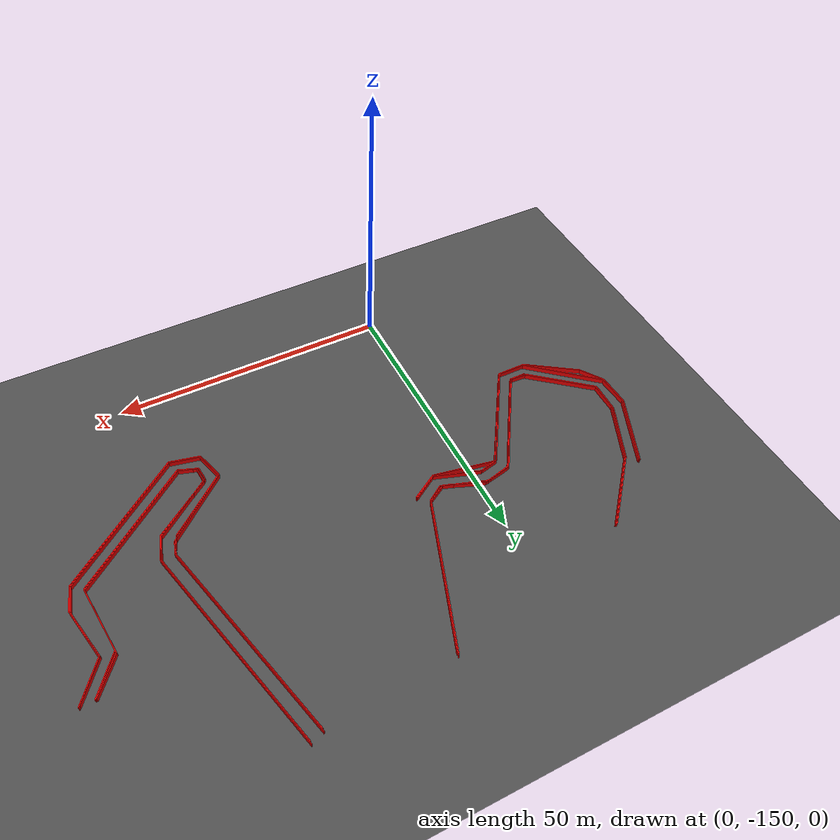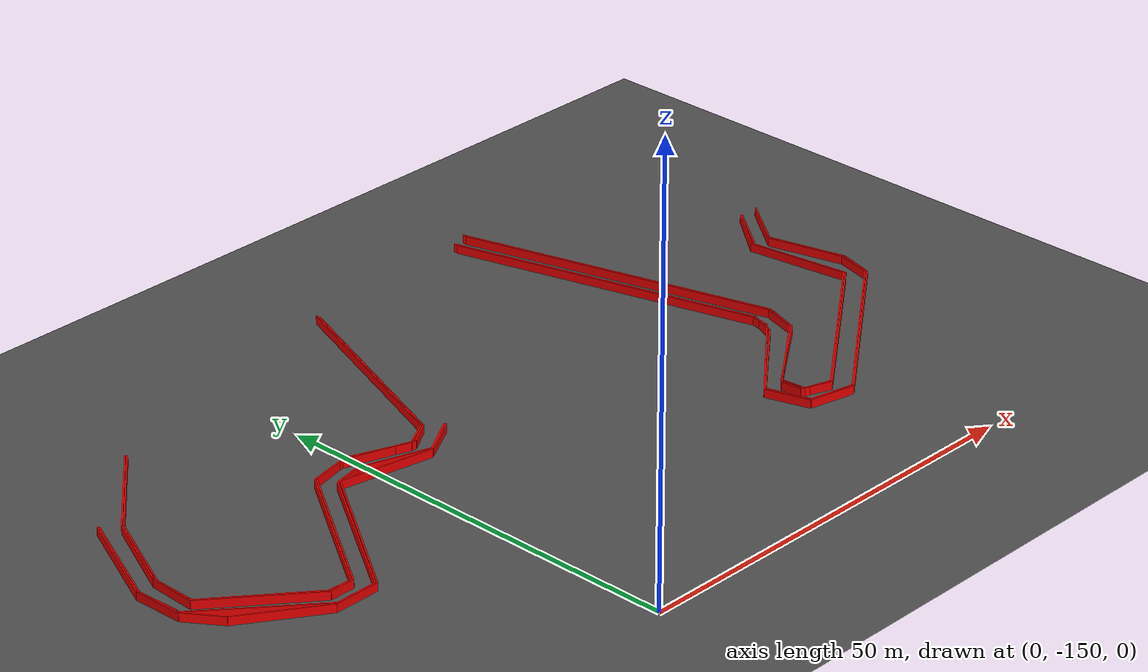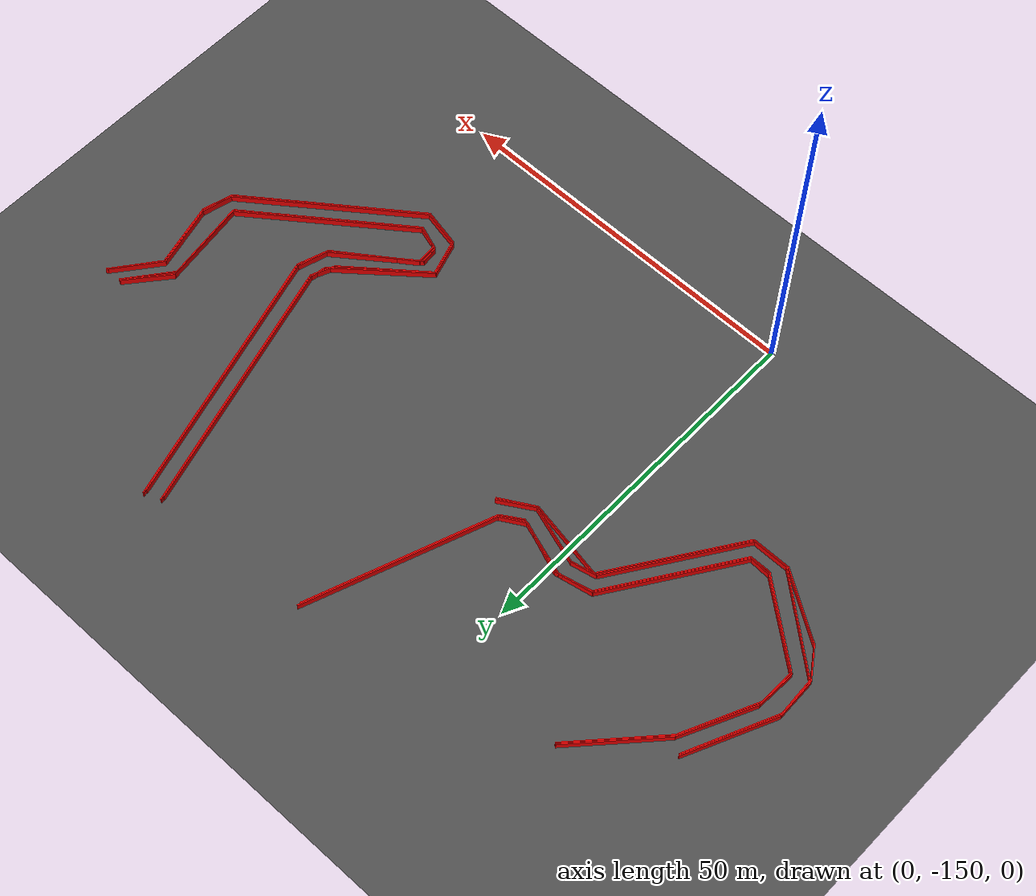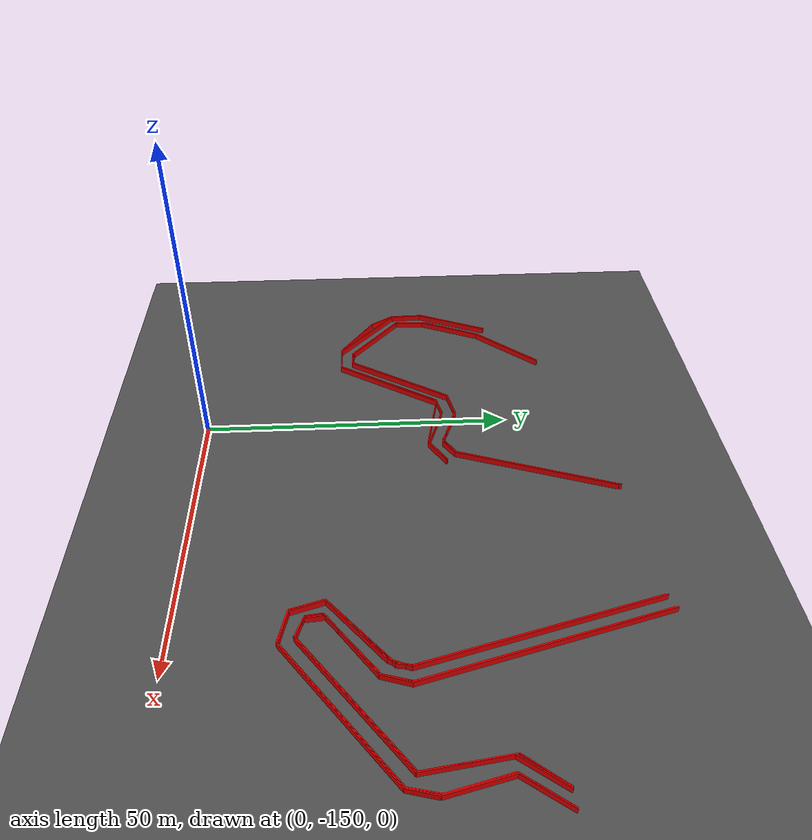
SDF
<sdf version="1.6">
 <world name="track_world">
  <model name="ground_plane">
   <static>true</static>
   <link name="link">
    <collision name="collision">
     <geometry><plane><normal>0 0 1</normal><size>1000 1000</size></plane></geometry>
    </collision>
    <visual name="visual">
     <geometry><plane><normal>0 0 1</normal><size>1000 1000</size></plane></geometry>
     <material><ambient>0.3 0.3 0.3 1</ambient><diffuse>0.3 0.3 0.3 1</diffuse></material>
    </visual>
   </link>
  </model>
  <model name="wall_8">
   <static>true</static>
   <pose>-29.93887694462932 -106.46650683885576 0.5 0 0 -1.9962459641649386</pose>
   <link name="link">
    <visual name="visual">
     <geometry><box><size>13.022690594389474 0.15 1.0</size></box></geometry>
     <material><ambient>1 0 0 1</ambient><diffuse>1 0 0 1</diffuse></material>
    </visual>
    <collision name="collision">
     <geometry><box><size>13.022690594389474 0.15 1.0</size></box></geometry>
    </collision>
   </link>
  </model>
  <model name="wall_9">
   <static>true</static>
   <pose>-32.53363694462932 -115.27015683885577 0.5 0 0 -1.5385494443596432</pose>
   <link name="link">
    <visual name="visual">
     <geometry><box><size>5.7485285775753 0.15 1.0</size></box></geometry>
     <material><ambient>1 0 0 1</ambient><diffuse>1 0 0 1</diffuse></material>
    </visual>
    <collision name="collision"><geometry><box><size>5.7485285775753 0.15 1.0</size></box></geometry></collision>
   </link>
  </model>
  <model name="wall_10">
   <static>true</static>
   <pose>-31.09725194462932 -120.08899683885576 0.5 0 0 -0.9664908199286656</pose>
   <link name="link">
    <visual name="visual">
     <geometry><box><size>4.729802721520213 0.15 1.0</size></box></geometry>
     <material><ambient>1 0 0 1</ambient><diffuse>1 0 0 1</diffuse></material>
    </visual>
    <collision name="collision">
     <geometry><box><size>4.729802721520213 0.15 1.0</size></box></geometry>
    </collision>
   </link>
  </model>
  <model name="wall_11">
   <static>true</static>
   <pose>-25.398046944629318 -124.90783683885576 0.5 0 0 -0.583076535019145</pose>
   <link name="link">
    <visual name="visual">
     <geometry><box><size>10.435152248625798 0.15 1.0</size></box></geometry>
     <material><ambient>1 0 0 1</ambient><diffuse>1 0 0 1</diffuse></material>
    </visual>
    <collision name="collision">
     <geometry><box><size>10.435152248625798 0.15 1.0</size></box></geometry>
    </collision>
   </link>
  </model>
  <model name="wall_12">
   <static>true</static>
   <pose>-18.35512694462932 -127.78060683885576 0.5 0 0 0.0</pose>
   <link name="link">
    <visual name="visual">
     <geometry><box><size>5.374859999999998 0.15 1.0</size></box></geometry>
     <material><ambient>1 0 0 1</ambient><diffuse>1 0 0 1</diffuse></material>
    </visual>
    <collision name="collision">
     <geometry><box><size>5.374859999999998 0.15 1.0</size></box></geometry>
    </collision>
   </link>
  </model>
  <model name="wall_13">
   <static>true</static>
   <pose>-10.15383194462932 -119.48664183885576 0.5 0 0 0.9840840451118751</pose>
   <link name="link">
    <visual name="visual">
     <geometry><box><size>19.919092615824646 0.15 1.0</size></box></geometry>
     <material><ambient>1 0 0 1</ambient><diffuse>1 0 0 1</diffuse></material>
    </visual>
    <collision name="collision">
     <geometry><box><size>19.919092615824646 0.15 1.0</size></box></geometry>
    </collision>
   </link>
  </model>
  <model name="wall_14">
   <static>true</static>
   <pose>0.8275630553706819 -112.21204683885576 0.5 0 0 -0.184324408899698</pose>
   <link name="link">
    <visual name="visual">
     <geometry><box><size>11.12348857109136 0.15 1.0</size></box></geometry>
     <material><ambient>1 0 0 1</ambient><diffuse>1 0 0 1</diffuse></material>
    </visual>
    <collision name="collision">
     <geometry><box><size>11.12348857109136 0.15 1.0</size></box></geometry>
    </collision>
   </link>
  </model>
  <model name="wall_15">
   <static>true</static>
   <pose>8.611843055370684 -111.88770183885575 0.5 0 0 0.5255837935516091</pose>
   <link name="link">
    <visual name="visual">
     <geometry><box><size>5.3564542614401125 0.15 1.0</size></box></geometry>
     <material><ambient>1 0 0 1</ambient><diffuse>1 0 0 1</diffuse></material>
    </visual>
    <collision name="collision">
     <geometry><box><size>5.3564542614401125 0.15 1.0</size></box></geometry>
    </collision>
   </link>
  </model>
  <model name="wall_20">
   <static>true</static>
   <pose>45.26282805537068 -100.30395183885577 0.5 0 0 -1.2991655755919616</pose>
   <link name="link">
    <visual name="visual">
     <geometry><box><size>36.266307117634696 0.15 1.0</size></box></geometry>
     <material><ambient>1 0 0 1</ambient><diffuse>1 0 0 1</diffuse></material>
    </visual>
    <collision name="collision">
     <geometry><box><size>36.266307117634696 0.15 1.0</size></box></geometry>
    </collision>
   </link>
  </model>
  <model name="wall_21">
   <static>true</static>
   <pose>49.94266305537068 -118.88428683885576 0.5 0 0 -1.7359450042095266</pose>
   <link name="link">
    <visual name="visual">
     <geometry><box><size>2.254758414730946 0.15 1.0</size></box></geometry>
     <material><ambient>1 0 0 1</ambient><diffuse>1 0 0 1</diffuse></material>
    </visual>
    <collision name="collision">
     <geometry><box><size>2.254758414730946 0.15 1.0</size></box></geometry>
    </collision>
   </link>
  </model>
  <model name="wall_22">
   <static>true</static>
   <pose>44.28979305537068 -124.58349183885576 0.5 0 0 -2.443529368865176</pose>
   <link name="link">
    <visual name="visual">
     <geometry><box><size>14.273887632754429 0.15 1.0</size></box></geometry>
     <material><ambient>1 0 0 1</ambient><diffuse>1 0 0 1</diffuse></material>
    </visual>
    <collision name="collision">
     <geometry><box><size>14.273887632754429 0.15 1.0</size></box></geometry>
    </collision>
   </link>
  </model>
  <model name="wall_23">
   <static>true</static>
   <pose>39.60995805537068 -131.67274683885574 0.5 0 0 -1.2658039799804917</pose>
   <link name="link">
    <visual name="visual">
     <geometry><box><size>5.2463007085469195 0.15 1.0</size></box></geometry>
     <material><ambient>1 0 0 1</ambient><diffuse>1 0 0 1</diffuse></material>
    </visual>
    <collision name="collision">
     <geometry><box><size>5.2463007085469195 0.15 1.0</size></box></geometry>
    </collision>
   </link>
  </model>
  <model name="wall_24">
   <static>true</static>
   <pose>43.08508305537068 -134.77719183885574 0.5 0 0 -0.22049376136667279</pose>
   <link name="link">
    <visual name="visual">
     <geometry><box><size>5.508216245183189 0.15 1.0</size></box></geometry>
     <material><ambient>1 0 0 1</ambient><diffuse>1 0 0 1</diffuse></material>
    </visual>
    <collision name="collision">
     <geometry><box><size>5.508216245183189 0.15 1.0</size></box></geometry>
    </collision>
   </link>
  </model>
  <model name="wall_25">
   <static>true</static>
   <pose>56.24422305537068 -127.50259683885577 0.5 0 0 0.6449155350070506</pose>
   <link name="link">
    <visual name="visual">
     <geometry><box><size>26.20710221497982 0.15 1.0</size></box></geometry>
     <material><ambient>1 0 0 1</ambient><diffuse>1 0 0 1</diffuse></material>
    </visual>
    <collision name="collision">
     <geometry><box><size>26.20710221497982 0.15 1.0</size></box></geometry>
    </collision>
   </link>
  </model>
  <model name="wall_26">
   <static>true</static>
   <pose>67.27195305537069 -117.54057183885575 0.5 0 0 1.3101939350475535</pose>
   <link name="link">
    <visual name="visual">
     <geometry><box><size>4.315875807307243 0.15 1.0</size></box></geometry>
     <material><ambient>1 0 0 1</ambient><diffuse>1 0 0 1</diffuse></material>
    </visual>
    <collision name="collision">
     <geometry><box><size>4.315875807307243 0.15 1.0</size></box></geometry>
    </collision>
   </link>
  </model>
  <model name="wall_27">
   <static>true</static>
   <pose>66.71593305537068 -110.96100183885576 0.5 0 0 1.8133478102220888</pose>
   <link name="link">
    <visual name="visual">
     <geometry><box><size>9.260047141699662 0.15 1.0</size></box></geometry>
     <material><ambient>1 0 0 1</ambient><diffuse>1 0 0 1</diffuse></material>
    </visual>
    <collision name="collision">
     <geometry><box><size>9.260047141699662 0.15 1.0</size></box></geometry>
    </collision>
   </link>
  </model>
  <model name="wall_28">
   <static>true</static>
   <pose>67.87430805537068 -103.45473183885576 0.5 0 0 0.9248382204887861</pose>
   <link name="link">
    <visual name="visual">
     <geometry><box><size>7.543360769007406 0.15 1.0</size></box></geometry>
     <material><ambient>1 0 0 1</ambient><diffuse>1 0 0 1</diffuse></material>
    </visual>
    <collision name="collision">
     <geometry><box><size>7.543360769007406 0.15 1.0</size></box></geometry>
    </collision>
   </link>
  </model>
  <model name="wall_41">
   <static>true</static>
   <pose>67.68896805537068 -103.59373683885576 0.5 0 0 -2.2242226679756585</pose>
   <link name="link">
    <visual name="visual">
     <geometry><box><size>7.4695699115344 0.15 1.0</size></box></geometry>
     <material><ambient>1 0 0 1</ambient><diffuse>1 0 0 1</diffuse></material>
    </visual>
    <collision name="collision"><geometry><box><size>7.4695699115344 0.15 1.0</size></box></geometry></collision>
   </link>
  </model>
  <model name="wall_42">
   <static>true</static>
   <pose>66.53059305537069 -110.91466683885577 0.5 0 0 -1.3208177053340726</pose>
   <link name="link">
    <visual name="visual">
     <geometry><box><size>8.990422927026302 0.15 1.0</size></box></geometry>
     <material><ambient>1 0 0 1</ambient><diffuse>1 0 0 1</diffuse></material>
    </visual>
    <collision name="collision">
     <geometry><box><size>8.990422927026302 0.15 1.0</size></box></geometry>
    </collision>
   </link>
  </model>
  <model name="wall_43">
   <static>true</static>
   <pose>67.13294805537069 -117.35523183885576 0.5 0 0 -1.8105394356653557</pose>
   <link name="link">
    <visual name="visual">
     <geometry><box><size>4.292932123782061 0.15 1.0</size></box></geometry>
     <material><ambient>1 0 0 1</ambient><diffuse>1 0 0 1</diffuse></material>
    </visual>
    <collision name="collision">
     <geometry><box><size>4.292932123782061 0.15 1.0</size></box></geometry>
    </collision>
   </link>
  </model>
  <model name="wall_44">
   <static>true</static>
   <pose>56.19788805537068 -127.31725683885577 0.5 0 0 -2.49454546036947</pose>
   <link name="link">
    <visual name="visual">
     <geometry><box><size>26.133104307994106 0.15 1.0</size></box></geometry>
     <material><ambient>1 0 0 1</ambient><diffuse>1 0 0 1</diffuse></material>
    </visual>
    <collision name="collision">
     <geometry><box><size>26.133104307994106 0.15 1.0</size></box></geometry>
    </collision>
   </link>
  </model>
  <model name="wall_45">
   <static>true</static>
   <pose>43.17775305537068 -134.63818683885575 0.5 0 0 2.9304993203670455</pose>
   <link name="link">
    <visual name="visual">
     <geometry><box><size>5.307329911735281 0.15 1.0</size></box></geometry>
     <material><ambient>1 0 0 1</ambient><diffuse>1 0 0 1</diffuse></material>
    </visual>
    <collision name="collision">
     <geometry><box><size>5.307329911735281 0.15 1.0</size></box></geometry>
    </collision>
   </link>
  </model>
  <model name="wall_46">
   <static>true</static>
   <pose>39.79529805537068 -131.62641183885574 0.5 0 0 1.8811837339272484</pose>
   <link name="link">
    <visual name="visual">
     <geometry><box><size>5.1579825641620705 0.15 1.0</size></box></geometry>
     <material><ambient>1 0 0 1</ambient><diffuse>1 0 0 1</diffuse></material>
    </visual>
    <collision name="collision">
     <geometry><box><size>5.1579825641620705 0.15 1.0</size></box></geometry>
    </collision>
   </link>
  </model>
  <model name="wall_47">
   <static>true</static>
   <pose>44.01178305537068 -125.09317683885575 0.5 0 0 0.6837093116343717</pose>
   <link name="link">
    <visual name="visual">
     <geometry><box><size>12.910098469461802 0.15 1.0</size></box></geometry>
     <material><ambient>1 0 0 1</ambient><diffuse>1 0 0 1</diffuse></material>
    </visual>
    <collision name="collision">
     <geometry><box><size>12.910098469461802 0.15 1.0</size></box></geometry>
    </collision>
   </link>
  </model>
  <model name="wall_48">
   <static>true</static>
   <pose>49.66465305537068 -119.44030683885576 0.5 0 0 1.1801892830972085</pose>
   <link name="link">
    <visual name="visual">
     <geometry><box><size>3.4074344414529816 0.15 1.0</size></box></geometry>
     <material><ambient>1 0 0 1</ambient><diffuse>1 0 0 1</diffuse></material>
    </visual>
    <collision name="collision">
     <geometry><box><size>3.4074344414529816 0.15 1.0</size></box></geometry>
    </collision>
   </link>
  </model>
  <model name="wall_49">
   <static>true</static>
   <pose>45.35549805537068 -100.11861183885577 0.5 0 0 1.8432238598579263</pose>
   <link name="link">
    <visual name="visual">
     <geometry><box><size>36.85167937541246 0.15 1.0</size></box></geometry>
     <material><ambient>1 0 0 1</ambient><diffuse>1 0 0 1</diffuse></material>
    </visual>
    <collision name="collision">
     <geometry><box><size>36.85167937541246 0.15 1.0</size></box></geometry>
    </collision>
   </link>
  </model>
  <model name="wall_54">
   <static>true</static>
   <pose>8.611843055370684 -111.70236183885575 0.5 0 0 -2.5981150588767514</pose>
   <link name="link">
    <visual name="visual">
     <geometry><box><size>5.196961361266791 0.15 1.0</size></box></geometry>
     <material><ambient>1 0 0 1</ambient><diffuse>1 0 0 1</diffuse></material>
    </visual>
    <collision name="collision">
     <geometry><box><size>5.196961361266791 0.15 1.0</size></box></geometry>
    </collision>
   </link>
  </model>
  <model name="wall_55">
   <static>true</static>
   <pose>2.4029530553706806 -111.74869683885575 0.5 0 0 2.8268349921984854</pose>
   <link name="link">
    <visual name="visual">
     <geometry><box><size>8.381385470314564 0.15 1.0</size></box></geometry>
     <material><ambient>1 0 0 1</ambient><diffuse>1 0 0 1</diffuse></material>
    </visual>
    <collision name="collision">
     <geometry><box><size>8.381385470314564 0.15 1.0</size></box></geometry>
    </collision>
   </link>
  </model>
  <model name="wall_56">
   <static>true</static>
   <pose>-3.2962519446293186 -110.82199683885577 0.5 0 0 -2.9286543040103954</pose>
   <link name="link">
    <visual name="visual">
     <geometry><box><size>3.5080215953867713 0.15 1.0</size></box></geometry>
     <material><ambient>1 0 0 1</ambient><diffuse>1 0 0 1</diffuse></material>
    </visual>
    <collision name="collision">
     <geometry><box><size>3.5080215953867713 0.15 1.0</size></box></geometry>
    </collision>
   </link>
  </model>
  <model name="wall_57">
   <static>true</static>
   <pose>-10.43184194462932 -119.44030683885576 0.5 0 0 -2.152288605655935</pose>
   <link name="link">
    <visual name="visual">
     <geometry><box><size>19.73958012166673 0.15 1.0</size></box></geometry>
     <material><ambient>1 0 0 1</ambient><diffuse>1 0 0 1</diffuse></material>
    </visual>
    <collision name="collision">
     <geometry><box><size>19.73958012166673 0.15 1.0</size></box></geometry>
    </collision>
   </link>
  </model>
  <model name="wall_58">
   <static>true</static>
   <pose>-18.355126944629323 -127.68793683885576 0.5 0 0 3.141592653589793</pose>
   <link name="link">
    <visual name="visual">
     <geometry><box><size>5.004179999999998 0.15 1.0</size></box></geometry>
     <material><ambient>1 0 0 1</ambient><diffuse>1 0 0 1</diffuse></material>
    </visual>
    <collision name="collision">
     <geometry><box><size>5.004179999999998 0.15 1.0</size></box></geometry>
    </collision>
   </link>
  </model>
  <model name="wall_59">
   <static>true</static>
   <pose>-26.55642194462932 -122.91543183885577 0.5 0 0 2.444460128177153</pose>
   <link name="link">
    <visual name="visual">
     <geometry><box><size>14.867110224525815 0.15 1.0</size></box></geometry>
     <material><ambient>1 0 0 1</ambient><diffuse>1 0 0 1</diffuse></material>
    </visual>
    <collision name="collision">
     <geometry><box><size>14.867110224525815 0.15 1.0</size></box></geometry>
    </collision>
   </link>
  </model>
  <model name="wall_60">
   <static>true</static>
   <pose>-32.394631944629324 -115.40916183885577 0.5 0 0 1.6216000308531187</pose>
   <link name="link">
    <visual name="visual">
     <geometry><box><size>5.4745934881961755 0.15 1.0</size></box></geometry>
     <material><ambient>1 0 0 1</ambient><diffuse>1 0 0 1</diffuse></material>
    </visual>
    <collision name="collision">
     <geometry><box><size>5.4745934881961755 0.15 1.0</size></box></geometry>
    </collision>
   </link>
  </model>
  <model name="wall_61">
   <static>true</static>
   <pose>-29.846206944629323 -106.69818183885576 0.5 0 0 1.148264773313587</pose>
   <link name="link">
    <visual name="visual">
     <geometry><box><size>13.107155169772732 0.15 1.0</size></box></geometry>
     <material><ambient>1 0 0 1</ambient><diffuse>1 0 0 1</diffuse></material>
    </visual>
    <collision name="collision">
     <geometry><box><size>13.107155169772732 0.15 1.0</size></box></geometry>
    </collision>
   </link>
  </model>
  <model name="wall_77">
   <static>true</static>
   <pose>-20.71821194462932 -96.92149683885576 0.5 0 0 -2.3135663013202583</pose>
   <link name="link">
    <visual name="visual">
     <geometry><box><size>13.838892376158583 0.15 1.0</size></box></geometry>
     <material><ambient>1 0 0 1</ambient><diffuse>1 0 0 1</diffuse></material>
    </visual>
    <collision name="collision">
     <geometry><box><size>13.838892376158583 0.15 1.0</size></box></geometry>
    </collision>
   </link>
  </model>
  <model name="wall_78">
   <static>true</static>
   <pose>-27.66846194462932 -106.88352183885576 0.5 0 0 -2.0074234866084377</pose>
   <link name="link">
    <visual name="visual">
     <geometry><box><size>10.737730123792458 0.15 1.0</size></box></geometry>
     <material><ambient>1 0 0 1</ambient><diffuse>1 0 0 1</diffuse></material>
    </visual>
    <collision name="collision">
     <geometry><box><size>10.737730123792458 0.15 1.0</size></box></geometry>
    </collision>
   </link>
  </model>
  <model name="wall_79">
   <static>true</static>
   <pose>-30.077881944629322 -114.52879683885575 0.5 0 0 -1.6207547225168397</pose>
   <link name="link">
    <visual name="visual">
     <geometry><box><size>5.5671459115151585 0.15 1.0</size></box></geometry>
     <material><ambient>1 0 0 1</ambient><diffuse>1 0 0 1</diffuse></material>
    </visual>
    <collision name="collision">
     <geometry><box><size>5.5671459115151585 0.15 1.0</size></box></geometry>
    </collision>
   </link>
  </model>
  <model name="wall_80">
   <static>true</static>
   <pose>-25.02736694462932 -121.52538183885576 0.5 0 0 -0.6823165548747477</pose>
   <link name="link">
    <visual name="visual">
     <geometry><box><size>13.373086941409602 0.15 1.0</size></box></geometry>
     <material><ambient>1 0 0 1</ambient><diffuse>1 0 0 1</diffuse></material>
    </visual>
    <collision name="collision">
     <geometry><box><size>13.373086941409602 0.15 1.0</size></box></geometry>
    </collision>
   </link>
  </model>
  <model name="wall_81">
   <static>true</static>
   <pose>-18.35512694462932 -125.74186683885576 0.5 0 0 0.0</pose>
   <link name="link">
    <visual name="visual">
     <geometry><box><size>2.965440000000001 0.15 1.0</size></box></geometry>
     <material><ambient>1 0 0 1</ambient><diffuse>1 0 0 1</diffuse></material>
    </visual>
    <collision name="collision">
     <geometry><box><size>2.965440000000001 0.15 1.0</size></box></geometry>
    </collision>
   </link>
  </model>
  <model name="wall_82">
   <static>true</static>
   <pose>-11.451211944629321 -117.49423683885576 0.5 0 0 0.9893040479338583</pose>
   <link name="link">
    <visual name="visual">
     <geometry><box><size>19.73958012166671 0.15 1.0</size></box></geometry>
     <material><ambient>1 0 0 1</ambient><diffuse>1 0 0 1</diffuse></material>
    </visual>
    <collision name="collision">
     <geometry><box><size>19.73958012166671 0.15 1.0</size></box></geometry>
    </collision>
   </link>
  </model>
  <model name="wall_83">
   <static>true</static>
   <pose>-3.805936944629323 -108.73692183885576 0.5 0 0 0.22527677921405717</pose>
   <link name="link">
    <visual name="visual">
     <geometry><box><size>4.563468262462228 0.15 1.0</size></box></geometry>
     <material><ambient>1 0 0 1</ambient><diffuse>1 0 0 1</diffuse></material>
    </visual>
    <collision name="collision">
     <geometry><box><size>4.563468262462228 0.15 1.0</size></box></geometry>
    </collision>
   </link>
  </model>
  <model name="wall_84">
   <static>true</static>
   <pose>2.3566180553706815 -109.52461683885576 0.5 0 0 -0.3182170001987814</pose>
   <link name="link">
    <visual name="visual">
     <geometry><box><size>8.293317837880094 0.15 1.0</size></box></geometry>
     <material><ambient>1 0 0 1</ambient><diffuse>1 0 0 1</diffuse></material>
    </visual>
    <collision name="collision">
     <geometry><box><size>8.293317837880094 0.15 1.0</size></box></geometry>
    </collision>
   </link>
  </model>
  <model name="wall_85">
   <static>true</static>
   <pose>7.6851430553706805 -109.94163183885576 0.5 0 0 0.564569393668104</pose>
   <link name="link">
    <visual name="visual">
     <geometry><box><size>3.290763762852019 0.15 1.0</size></box></geometry>
     <material><ambient>1 0 0 1</ambient><diffuse>1 0 0 1</diffuse></material>
    </visual>
    <collision name="collision">
     <geometry><box><size>3.290763762852019 0.15 1.0</size></box></geometry>
    </collision>
   </link>
  </model>
  <model name="wall_86">
   <static>true</static>
   <pose>13.616023055370675 -96.64348683885575 0.5 0 0 1.2202289179577397</pose>
   <link name="link">
    <visual name="visual">
     <geometry><box><size>26.443932931188584 0.15 1.0</size></box></geometry>
     <material><ambient>1 0 0 1</ambient><diffuse>1 0 0 1</diffuse></material>
    </visual>
    <collision name="collision">
     <geometry><box><size>26.443932931188584 0.15 1.0</size></box></geometry>
    </collision>
   </link>
  </model>
  <model name="wall_91">
   <static>true</static>
   <pose>47.57957805537069 -99.88693683885576 0.5 0 0 -1.300384021374158</pose>
   <link name="link">
    <visual name="visual">
     <geometry><box><size>37.11951189550451 0.15 1.0</size></box></geometry>
     <material><ambient>1 0 0 1</ambient><diffuse>1 0 0 1</diffuse></material>
    </visual>
    <collision name="collision">
     <geometry><box><size>37.11951189550451 0.15 1.0</size></box></geometry>
    </collision>
   </link>
  </model>
  <model name="wall_92">
   <static>true</static>
   <pose>51.935068055370685 -119.81098683885577 0.5 0 0 -1.8580777801920356</pose>
   <link name="link">
    <visual name="visual">
     <geometry><box><size>4.25172545380108 0.15 1.0</size></box></geometry>
     <material><ambient>1 0 0 1</ambient><diffuse>1 0 0 1</diffuse></material>
    </visual>
    <collision name="collision"><geometry><box><size>4.25172545380108 0.15 1.0</size></box></geometry></collision>
   </link>
  </model>
  <model name="wall_93">
   <static>true</static>
   <pose>46.28219805537068 -125.64919683885576 0.5 0 0 -2.4966252701874967</pose>
   <link name="link">
    <visual name="visual">
     <geometry><box><size>12.640201587969232 0.15 1.0</size></box></geometry>
     <material><ambient>1 0 0 1</ambient><diffuse>1 0 0 1</diffuse></material>
    </visual>
    <collision name="collision">
     <geometry><box><size>12.640201587969232 0.15 1.0</size></box></geometry>
    </collision>
   </link>
  </model>
  <model name="wall_94">
   <static>true</static>
   <pose>41.37068805537068 -130.65337683885576 0.5 0 0 -1.4559197213780002</pose>
   <link name="link">
    <visual name="visual">
     <geometry><box><size>2.4254060065275778 0.15 1.0</size></box></geometry>
     <material><ambient>1 0 0 1</ambient><diffuse>1 0 0 1</diffuse></material>
    </visual>
    <collision name="collision">
     <geometry><box><size>2.4254060065275778 0.15 1.0</size></box></geometry>
    </collision>
   </link>
  </model>
  <model name="wall_95">
   <static>true</static>
   <pose>43.22408805537068 -132.50677683885579 0.5 0 0 -0.36172924151993263</pose>
   <link name="link">
    <visual name="visual">
     <geometry><box><size>3.6660326960489664 0.15 1.0</size></box></geometry>
     <material><ambient>1 0 0 1</ambient><diffuse>1 0 0 1</diffuse></material>
    </visual>
    <collision name="collision">
     <geometry><box><size>3.6660326960489664 0.15 1.0</size></box></geometry>
    </collision>
   </link>
  </model>
  <model name="wall_96">
   <static>true</static>
   <pose>54.900508055370686 -125.64919683885577 0.5 0 0 0.6457299312541679</pose>
   <link name="link">
    <visual name="visual">
     <geometry><box><size>24.946825963518904 0.15 1.0</size></box></geometry>
     <material><ambient>1 0 0 1</ambient><diffuse>1 0 0 1</diffuse></material>
    </visual>
    <collision name="collision">
     <geometry><box><size>24.946825963518904 0.15 1.0</size></box></geometry>
    </collision>
   </link>
  </model>
  <model name="wall_97">
   <static>true</static>
   <pose>64.02850305537069 -112.30471683885577 0.5 0 0 1.7126933813990604</pose>
   <link name="link">
    <visual name="visual">
     <geometry><box><size>11.794965374260316 0.15 1.0</size></box></geometry>
     <material><ambient>1 0 0 1</ambient><diffuse>1 0 0 1</diffuse></material>
    </visual>
    <collision name="collision">
     <geometry><box><size>11.794965374260316 0.15 1.0</size></box></geometry>
    </collision>
   </link>
  </model>
  <model name="wall_98">
   <static>true</static>
   <pose>65.4648880553707 -103.50106683885576 0.5 0 0 0.9173699856141349</pose>
   <link name="link">
    <visual name="visual">
     <geometry><box><size>7.4695699115344 0.15 1.0</size></box></geometry>
     <material><ambient>1 0 0 1</ambient><diffuse>1 0 0 1</diffuse></material>
    </visual>
    <collision name="collision"><geometry><box><size>7.4695699115344 0.15 1.0</size></box></geometry></collision>
   </link>
  </model>
  <model name="wall_111">
   <static>true</static>
   <pose>65.32588305537068 -103.26939183885577 0.5 0 0 -2.253750636685218</pose>
   <link name="link">
    <visual name="visual">
     <geometry><box><size>7.048404903699824 0.15 1.0</size></box></geometry>
     <material><ambient>1 0 0 1</ambient><diffuse>1 0 0 1</diffuse></material>
    </visual>
    <collision name="collision">
     <geometry><box><size>7.048404903699824 0.15 1.0</size></box></geometry>
    </collision>
   </link>
  </model>
  <model name="wall_112">
   <static>true</static>
   <pose>63.93583305537069 -111.98037183885576 0.5 0 0 -1.4321565896607389</pose>
   <link name="link">
    <visual name="visual">
     <geometry><box><size>12.070245266294304 0.15 1.0</size></box></geometry>
     <material><ambient>1 0 0 1</ambient><diffuse>1 0 0 1</diffuse></material>
    </visual>
    <collision name="collision">
     <geometry><box><size>12.070245266294304 0.15 1.0</size></box></geometry>
    </collision>
   </link>
  </model>
  <model name="wall_113">
   <static>true</static>
   <pose>54.85417305537069 -125.46385683885575 0.5 0 0 -2.4936206356892887</pose>
   <link name="link">
    <visual name="visual">
     <geometry><box><size>24.872876591902273 0.15 1.0</size></box></geometry>
     <material><ambient>1 0 0 1</ambient><diffuse>1 0 0 1</diffuse></material>
    </visual>
    <collision name="collision">
     <geometry><box><size>24.872876591902273 0.15 1.0</size></box></geometry>
    </collision>
   </link>
  </model>
  <model name="wall_114">
   <static>true</static>
   <pose>43.40942805537068 -132.50677683885576 0.5 0 0 2.8473580884786105</pose>
   <link name="link">
    <visual name="visual">
     <geometry><box><size>3.19543575465068 0.15 1.0</size></box></geometry>
     <material><ambient>1 0 0 1</ambient><diffuse>1 0 0 1</diffuse></material>
    </visual>
    <collision name="collision"><geometry><box><size>3.19543575465068 0.15 1.0</size></box></geometry></collision>
   </link>
  </model>
  <model name="wall_115">
   <static>true</static>
   <pose>41.741368055370685 -130.56070683885576 0.5 0 0 1.6642731079534843</pose>
   <link name="link">
    <visual name="visual">
     <geometry><box><size>2.978443209749013 0.15 1.0</size></box></geometry>
     <material><ambient>1 0 0 1</ambient><diffuse>1 0 0 1</diffuse></material>
    </visual>
    <collision name="collision">
     <geometry><box><size>2.978443209749013 0.15 1.0</size></box></geometry>
    </collision>
   </link>
  </model>
  <model name="wall_116">
   <static>true</static>
   <pose>46.46753805537068 -125.60286183885576 0.5 0 0 0.6202494859828228</pose>
   <link name="link">
    <visual name="visual">
     <geometry><box><size>11.957662237452599 0.15 1.0</size></box></geometry>
     <material><ambient>1 0 0 1</ambient><diffuse>1 0 0 1</diffuse></material>
    </visual>
    <collision name="collision">
     <geometry><box><size>11.957662237452599 0.15 1.0</size></box></geometry>
    </collision>
   </link>
  </model>
  <model name="wall_117">
   <static>true</static>
   <pose>52.02773805537068 -119.99632683885577 0.5 0 0 1.2555816270441815</pose>
   <link name="link">
    <visual name="visual">
     <geometry><box><size>4.4837343091334 0.15 1.0</size></box></geometry>
     <material><ambient>1 0 0 1</ambient><diffuse>1 0 0 1</diffuse></material>
    </visual>
    <collision name="collision"><geometry><box><size>4.4837343091334 0.15 1.0</size></box></geometry></collision>
   </link>
  </model>
  <model name="wall_118">
   <static>true</static>
   <pose>47.67224805537069 -99.70159683885576 0.5 0 0 1.8420063004004985</pose>
   <link name="link">
    <visual name="visual">
     <geometry><box><size>37.704848239324605 0.15 1.0</size></box></geometry>
     <material><ambient>1 0 0 1</ambient><diffuse>1 0 0 1</diffuse></material>
    </visual>
    <collision name="collision">
     <geometry><box><size>37.704848239324605 0.15 1.0</size></box></geometry>
    </collision>
   </link>
  </model>
  <model name="wall_123">
   <static>true</static>
   <pose>13.569688055370676 -96.31914183885576 0.5 0 0 -1.9210479333833512</pose>
   <link name="link">
    <visual name="visual">
     <geometry><box><size>26.736860868355503 0.15 1.0</size></box></geometry>
     <material><ambient>1 0 0 1</ambient><diffuse>1 0 0 1</diffuse></material>
    </visual>
    <collision name="collision">
     <geometry><box><size>26.736860868355503 0.15 1.0</size></box></geometry>
    </collision>
   </link>
  </model>
  <model name="wall_124">
   <static>true</static>
   <pose>7.3607980553706795 -109.80262683885576 0.5 0 0 -2.622446539343268</pose>
   <link name="link">
    <visual name="visual">
     <geometry><box><size>3.735647127674133 0.15 1.0</size></box></geometry>
     <material><ambient>1 0 0 1</ambient><diffuse>1 0 0 1</diffuse></material>
    </visual>
    <collision name="collision">
     <geometry><box><size>3.735647127674133 0.15 1.0</size></box></geometry>
    </collision>
   </link>
  </model>
  <model name="wall_125">
   <static>true</static>
   <pose>2.3566180553706815 -109.43194683885577 0.5 0 0 2.775337093159015</pose>
   <link name="link">
    <visual name="visual">
     <geometry><box><size>7.245466635469384 0.15 1.0</size></box></geometry>
     <material><ambient>1 0 0 1</ambient><diffuse>1 0 0 1</diffuse></material>
    </visual>
    <collision name="collision">
     <geometry><box><size>7.245466635469384 0.15 1.0</size></box></geometry>
    </collision>
   </link>
  </model>
  <model name="wall_126">
   <static>true</static>
   <pose>-3.6205969446293196 -108.64425183885577 0.5 0 0 -2.9476335063298986</pose>
   <link name="link">
    <visual name="visual">
     <geometry><box><size>5.288689159640604 0.15 1.0</size></box></geometry>
     <material><ambient>1 0 0 1</ambient><diffuse>1 0 0 1</diffuse></material>
    </visual>
    <collision name="collision">
     <geometry><box><size>5.288689159640604 0.15 1.0</size></box></geometry>
    </collision>
   </link>
  </model>
  <model name="wall_127">
   <static>true</static>
   <pose>-11.636551944629321 -117.40156683885576 0.5 0 0 -2.152288605655935</pose>
   <link name="link">
    <visual name="visual">
     <geometry><box><size>19.739580121666712 0.15 1.0</size></box></geometry>
     <material><ambient>1 0 0 1</ambient><diffuse>1 0 0 1</diffuse></material>
    </visual>
    <collision name="collision">
     <geometry><box><size>19.739580121666712 0.15 1.0</size></box></geometry>
    </collision>
   </link>
  </model>
  <model name="wall_128">
   <static>true</static>
   <pose>-18.49413194462932 -125.55652683885576 0.5 0 0 3.077165814164241</pose>
   <link name="link">
    <visual name="visual">
     <geometry><box><size>2.8787425012494556 0.15 1.0</size></box></geometry>
     <material><ambient>1 0 0 1</ambient><diffuse>1 0 0 1</diffuse></material>
    </visual>
    <collision name="collision">
     <geometry><box><size>2.8787425012494556 0.15 1.0</size></box></geometry>
    </collision>
   </link>
  </model>
  <model name="wall_129">
   <static>true</static>
   <pose>-24.98103194462932 -121.38637683885577 0.5 0 0 2.4623924321171846</pose>
   <link name="link">
    <visual name="visual">
     <geometry><box><size>12.982071470397168 0.15 1.0</size></box></geometry>
     <material><ambient>1 0 0 1</ambient><diffuse>1 0 0 1</diffuse></material>
    </visual>
    <collision name="collision">
     <geometry><box><size>12.982071470397168 0.15 1.0</size></box></geometry>
    </collision>
   </link>
  </model>
  <model name="wall_130">
   <static>true</static>
   <pose>-29.98521194462932 -114.80680683885576 0.5 0 0 1.552279924726888</pose>
   <link name="link">
    <visual name="visual">
     <geometry><box><size>5.005037982003724 0.15 1.0</size></box></geometry>
     <material><ambient>1 0 0 1</ambient><diffuse>1 0 0 1</diffuse></material>
    </visual>
    <collision name="collision">
     <geometry><box><size>5.005037982003724 0.15 1.0</size></box></geometry>
    </collision>
   </link>
  </model>
  <model name="wall_131">
   <static>true</static>
   <pose>-27.622126944629322 -107.25420183885576 0.5 0 0 1.1407181917390345</pose>
   <link name="link">
    <visual name="visual">
     <geometry><box><size>11.113061203417363 0.15 1.0</size></box></geometry>
     <material><ambient>1 0 0 1</ambient><diffuse>1 0 0 1</diffuse></material>
    </visual>
    <collision name="collision">
     <geometry><box><size>11.113061203417363 0.15 1.0</size></box></geometry>
    </collision>
   </link>
  </model>
  <model name="wall_132">
   <static>true</static>
   <pose>-20.579206944629323 -97.06050183885576 0.5 0 0 0.8276265655104504</pose>
   <link name="link">
    <visual name="visual">
     <geometry><box><size>13.969829607139097 0.15 1.0</size></box></geometry>
     <material><ambient>1 0 0 1</ambient><diffuse>1 0 0 1</diffuse></material>
    </visual>
    <collision name="collision">
     <geometry><box><size>13.969829607139097 0.15 1.0</size></box></geometry>
    </collision>
   </link>
  </model>
 </world>
</sdf>
